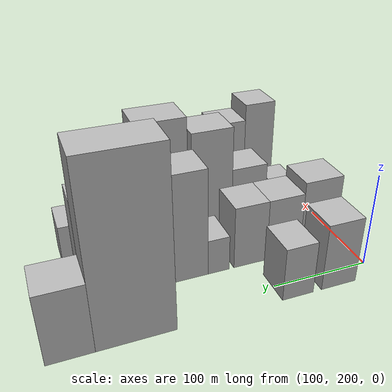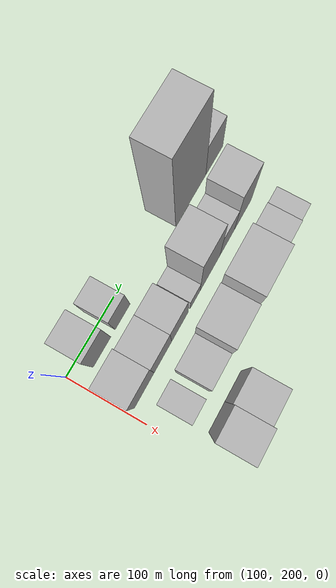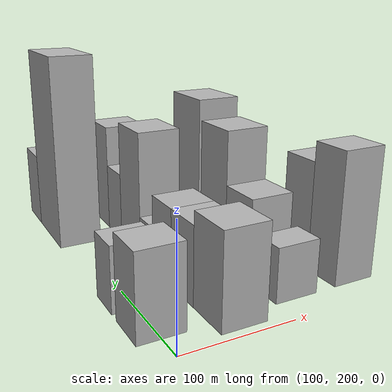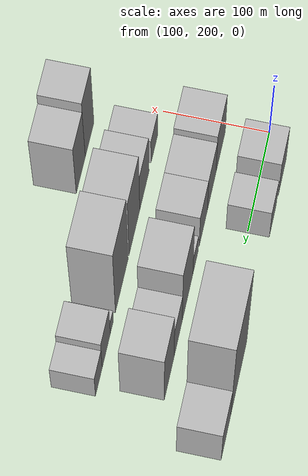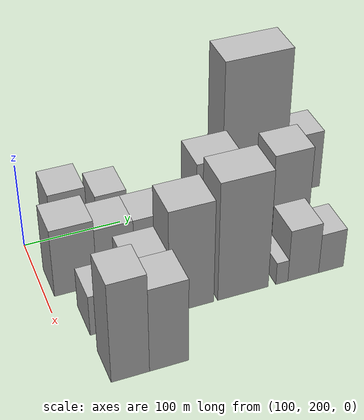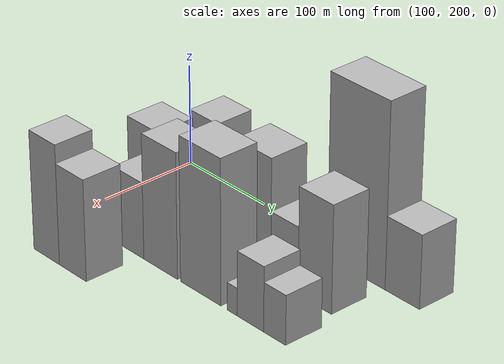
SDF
<sdf version="1.6">
 <world name="default">
  <model name="building_31">
   <static>1</static>
   <pose>100.0000 241.9794 0 0.000000 0.000000 0.000000</pose>
   <link name="link">
    <pose>0 0 36.00 0 0 0</pose>
    <collision name="collision"><geometry><box><size>40.0000 37.2263 72.0000</size></box></geometry></collision>
    <visual name="visual">
     <cast_shadows>0</cast_shadows>
     <geometry><box><size>40.0000 37.2263 72.0000</size></box></geometry>
     <material>
      <script>
       <uri>model://HANNAS_wall/materials/scripts</uri>
       <uri>model://HANNAS_wall/materials/textures</uri>
       <name>vrc/HANNAS_wall</name>
      </script>
     </material>
    </visual>
   </link>
  </model>
  <model name="building_32">
   <static>1</static>
   <pose>100.0000 285.6427 0 0.000000 0.000000 0.000000</pose>
   <link name="link">
    <pose>0 0 28.50 0 0 0</pose>
    <collision name="collision"><geometry><box><size>40.0000 32.1003 57.0000</size></box></geometry></collision>
    <visual name="visual">
     <cast_shadows>0</cast_shadows>
     <geometry><box><size>40.0000 32.1003 57.0000</size></box></geometry>
     <material>
      <script>
       <uri>model://HANNAS_wall/materials/scripts</uri>
       <uri>model://HANNAS_wall/materials/textures</uri>
       <name>vrc/HANNAS_wall</name>
      </script>
     </material>
    </visual>
   </link>
  </model>
  <model name="building_33">
   <static>1</static>
   <pose>100.0000 439.0972 0 0.000000 0.000000 0.000000</pose>
   <link name="link">
    <pose>0 0 90.00 0 0 0</pose>
    <collision name="collision"><geometry><box><size>40.0000 70.9362 180.0000</size></box></geometry></collision>
    <visual name="visual">
     <cast_shadows>0</cast_shadows>
     <geometry><box><size>40.0000 70.9362 180.0000</size></box></geometry>
     <material>
      <script>
       <uri>model://HANNAS_wall/materials/scripts</uri>
       <uri>model://HANNAS_wall/materials/textures</uri>
       <name>vrc/HANNAS_wall</name>
      </script>
     </material>
    </visual>
   </link>
  </model>
  <model name="building_34">
   <static>1</static>
   <pose>100.0000 495.0541 0 0.000000 0.000000 0.000000</pose>
   <link name="link">
    <pose>0 0 36.00 0 0 0</pose>
    <collision name="collision"><geometry><box><size>40.0000 40.9777 72.0000</size></box></geometry></collision>
    <visual name="visual">
     <cast_shadows>0</cast_shadows>
     <geometry><box><size>40.0000 40.9777 72.0000</size></box></geometry>
     <material>
      <script>
       <uri>model://HANNAS_wall/materials/scripts</uri>
       <uri>model://HANNAS_wall/materials/textures</uri>
       <name>vrc/HANNAS_wall</name>
      </script>
     </material>
    </visual>
   </link>
  </model>
  <model name="building_85">
   <static>1</static>
   <pose>160.0000 229.3633 0 0.000000 0.000000 0.000000</pose>
   <link name="link">
    <pose>0 0 40.50 0 0 0</pose>
    <collision name="collision"><geometry><box><size>40.0000 41.9816 81.0000</size></box></geometry></collision>
    <visual name="visual">
     <cast_shadows>0</cast_shadows>
     <geometry><box><size>40.0000 41.9816 81.0000</size></box></geometry>
     <material>
      <script>
       <uri>model://HANNAS_wall/materials/scripts</uri>
       <uri>model://HANNAS_wall/materials/textures</uri>
       <name>vrc/HANNAS_wall</name>
      </script>
     </material>
    </visual>
   </link>
  </model>
  <model name="building_86">
   <static>1</static>
   <pose>160.0000 269.3965 0 0.000000 0.000000 0.000000</pose>
   <link name="link">
    <pose>0 0 34.50 0 0 0</pose>
    <collision name="collision"><geometry><box><size>40.0000 38.0850 69.0000</size></box></geometry></collision>
    <visual name="visual">
     <cast_shadows>0</cast_shadows>
     <geometry><box><size>40.0000 38.0850 69.0000</size></box></geometry>
     <material>
      <script>
       <uri>model://HANNAS_wall/materials/scripts</uri>
       <uri>model://HANNAS_wall/materials/textures</uri>
       <name>vrc/HANNAS_wall</name>
      </script>
     </material>
    </visual>
   </link>
  </model>
  <model name="building_87">
   <static>1</static>
   <pose>160.0000 306.3958 0 0.000000 0.000000 0.000000</pose>
   <link name="link">
    <pose>0 0 34.50 0 0 0</pose>
    <collision name="collision"><geometry><box><size>40.0000 35.9135 69.0000</size></box></geometry></collision>
    <visual name="visual">
     <cast_shadows>0</cast_shadows>
     <geometry><box><size>40.0000 35.9135 69.0000</size></box></geometry>
     <material>
      <script>
       <uri>model://HANNAS_wall/materials/scripts</uri>
       <uri>model://HANNAS_wall/materials/textures</uri>
       <name>vrc/HANNAS_wall</name>
      </script>
     </material>
    </visual>
   </link>
  </model>
  <model name="building_88">
   <static>1</static>
   <pose>160.0000 340.5164 0 0.000000 0.000000 0.000000</pose>
   <link name="link">
    <pose>0 0 19.50 0 0 0</pose>
    <collision name="collision"><geometry><box><size>40.0000 22.3277 39.0000</size></box></geometry></collision>
    <visual name="visual">
     <cast_shadows>0</cast_shadows>
     <geometry><box><size>40.0000 22.3277 39.0000</size></box></geometry>
     <material>
      <script>
       <uri>model://HANNAS_wall/materials/scripts</uri>
       <uri>model://HANNAS_wall/materials/textures</uri>
       <name>vrc/HANNAS_wall</name>
      </script>
     </material>
    </visual>
   </link>
  </model>
  <model name="building_89">
   <static>1</static>
   <pose>160.0000 374.5953 0 0.000000 0.000000 0.000000</pose>
   <link name="link">
    <pose>0 0 58.50 0 0 0</pose>
    <collision name="collision"><geometry><box><size>40.0000 45.8302 117.0000</size></box></geometry></collision>
    <visual name="visual">
     <cast_shadows>0</cast_shadows>
     <geometry><box><size>40.0000 45.8302 117.0000</size></box></geometry>
     <material>
      <script>
       <uri>model://HANNAS_wall/materials/scripts</uri>
       <uri>model://HANNAS_wall/materials/textures</uri>
       <name>vrc/HANNAS_wall</name>
      </script>
     </material>
    </visual>
   </link>
  </model>
  <model name="building_90">
   <static>1</static>
   <pose>160.0000 414.5548 0 0.000000 0.000000 0.000000</pose>
   <link name="link">
    <pose>0 0 33.00 0 0 0</pose>
    <collision name="collision"><geometry><box><size>40.0000 34.0886 66.0000</size></box></geometry></collision>
    <visual name="visual">
     <cast_shadows>0</cast_shadows>
     <geometry><box><size>40.0000 34.0886 66.0000</size></box></geometry>
     <material>
      <script>
       <uri>model://HANNAS_wall/materials/scripts</uri>
       <uri>model://HANNAS_wall/materials/textures</uri>
       <name>vrc/HANNAS_wall</name>
      </script>
     </material>
    </visual>
   </link>
  </model>
  <model name="building_91">
   <static>1</static>
   <pose>160.0000 452.0418 0 0.000000 0.000000 0.000000</pose>
   <link name="link">
    <pose>0 0 52.50 0 0 0</pose>
    <collision name="collision"><geometry><box><size>40.0000 40.8854 105.0000</size></box></geometry></collision>
    <visual name="visual">
     <cast_shadows>0</cast_shadows>
     <geometry><box><size>40.0000 40.8854 105.0000</size></box></geometry>
     <material>
      <script>
       <uri>model://HANNAS_wall/materials/scripts</uri>
       <uri>model://HANNAS_wall/materials/textures</uri>
       <name>vrc/HANNAS_wall</name>
      </script>
     </material>
    </visual>
   </link>
  </model>
  <model name="building_143">
   <static>1</static>
   <pose>220.0000 238.9055 0 0.000000 0.000000 0.000000</pose>
   <link name="link">
    <pose>0 0 24.00 0 0 0</pose>
    <collision name="collision"><geometry><box><size>40.0000 28.1638 48.0000</size></box></geometry></collision>
    <visual name="visual">
     <cast_shadows>0</cast_shadows>
     <geometry><box><size>40.0000 28.1638 48.0000</size></box></geometry>
     <material>
      <script>
       <uri>model://HANNAS_wall/materials/scripts</uri>
       <uri>model://HANNAS_wall/materials/textures</uri>
       <name>vrc/HANNAS_wall</name>
      </script>
     </material>
    </visual>
   </link>
  </model>
  <model name="building_144">
   <static>1</static>
   <pose>220.0000 281.6469 0 0.000000 0.000000 0.000000</pose>
   <link name="link">
    <pose>0 0 37.50 0 0 0</pose>
    <collision name="collision"><geometry><box><size>40.0000 39.3190 75.0000</size></box></geometry></collision>
    <visual name="visual">
     <cast_shadows>0</cast_shadows>
     <geometry><box><size>40.0000 39.3190 75.0000</size></box></geometry>
     <material>
      <script>
       <uri>model://HANNAS_wall/materials/scripts</uri>
       <uri>model://HANNAS_wall/materials/textures</uri>
       <name>vrc/HANNAS_wall</name>
      </script>
     </material>
    </visual>
   </link>
  </model>
  <model name="building_145">
   <static>1</static>
   <pose>220.0000 323.6219 0 0.000000 0.000000 0.000000</pose>
   <link name="link">
    <pose>0 0 61.50 0 0 0</pose>
    <collision name="collision"><geometry><box><size>40.0000 44.6308 123.0000</size></box></geometry></collision>
    <visual name="visual">
     <cast_shadows>0</cast_shadows>
     <geometry><box><size>40.0000 44.6308 123.0000</size></box></geometry>
     <material>
      <script>
       <uri>model://HANNAS_wall/materials/scripts</uri>
       <uri>model://HANNAS_wall/materials/textures</uri>
       <name>vrc/HANNAS_wall</name>
      </script>
     </material>
    </visual>
   </link>
  </model>
  <model name="building_146">
   <static>1</static>
   <pose>220.0000 375.8786 0 0.000000 0.000000 0.000000</pose>
   <link name="link">
    <pose>0 0 70.50 0 0 0</pose>
    <collision name="collision"><geometry><box><size>40.0000 51.8826 141.0000</size></box></geometry></collision>
    <visual name="visual">
     <cast_shadows>0</cast_shadows>
     <geometry><box><size>40.0000 51.8826 141.0000</size></box></geometry>
     <material>
      <script>
       <uri>model://HANNAS_wall/materials/scripts</uri>
       <uri>model://HANNAS_wall/materials/textures</uri>
       <name>vrc/HANNAS_wall</name>
      </script>
     </material>
    </visual>
   </link>
  </model>
  <model name="building_147">
   <static>1</static>
   <pose>220.0000 416.1656 0 0.000000 0.000000 0.000000</pose>
   <link name="link">
    <pose>0 0 13.50 0 0 0</pose>
    <collision name="collision"><geometry><box><size>40.0000 12.6913 27.0000</size></box></geometry></collision>
    <visual name="visual">
     <cast_shadows>0</cast_shadows>
     <geometry><box><size>40.0000 12.6913 27.0000</size></box></geometry>
     <material>
      <script>
       <uri>model://HANNAS_wall/materials/scripts</uri>
       <uri>model://HANNAS_wall/materials/textures</uri>
       <name>vrc/HANNAS_wall</name>
      </script>
     </material>
    </visual>
   </link>
  </model>
  <model name="building_148">
   <static>1</static>
   <pose>220.0000 438.8307 0 0.000000 0.000000 0.000000</pose>
   <link name="link">
    <pose>0 0 31.50 0 0 0</pose>
    <collision name="collision"><geometry><box><size>40.0000 32.6391 63.0000</size></box></geometry></collision>
    <visual name="visual">
     <cast_shadows>0</cast_shadows>
     <geometry><box><size>40.0000 32.6391 63.0000</size></box></geometry>
     <material>
      <script>
       <uri>model://HANNAS_wall/materials/scripts</uri>
       <uri>model://HANNAS_wall/materials/textures</uri>
       <name>vrc/HANNAS_wall</name>
      </script>
     </material>
    </visual>
   </link>
  </model>
  <model name="building_149">
   <static>1</static>
   <pose>220.0000 468.4597 0 0.000000 0.000000 0.000000</pose>
   <link name="link">
    <pose>0 0 24.00 0 0 0</pose>
    <collision name="collision"><geometry><box><size>40.0000 26.6188 48.0000</size></box></geometry></collision>
    <visual name="visual">
     <cast_shadows>0</cast_shadows>
     <geometry><box><size>40.0000 26.6188 48.0000</size></box></geometry>
     <material>
      <script>
       <uri>model://HANNAS_wall/materials/scripts</uri>
       <uri>model://HANNAS_wall/materials/textures</uri>
       <name>vrc/HANNAS_wall</name>
      </script>
     </material>
    </visual>
   </link>
  </model>
  <model name="building_195">
   <static>1</static>
   <pose>280.0000 242.7639 0 0.000000 0.000000 0.000000</pose>
   <link name="link">
    <pose>0 0 58.50 0 0 0</pose>
    <collision name="collision"><geometry><box><size>40.0000 35.4689 117.0000</size></box></geometry></collision>
    <visual name="visual">
     <cast_shadows>0</cast_shadows>
     <geometry><box><size>40.0000 35.4689 117.0000</size></box></geometry>
     <material>
      <script>
       <uri>model://HANNAS_wall/materials/scripts</uri>
       <uri>model://HANNAS_wall/materials/textures</uri>
       <name>vrc/HANNAS_wall</name>
      </script>
     </material>
    </visual>
   </link>
  </model>
  <model name="building_196">
   <static>1</static>
   <pose>280.0000 278.8852 0 0.000000 0.000000 0.000000</pose>
   <link name="link">
    <pose>0 0 49.50 0 0 0</pose>
    <collision name="collision"><geometry><box><size>40.0000 36.7737 99.0000</size></box></geometry></collision>
    <visual name="visual">
     <cast_shadows>0</cast_shadows>
     <geometry><box><size>40.0000 36.7737 99.0000</size></box></geometry>
     <material>
      <script>
       <uri>model://HANNAS_wall/materials/scripts</uri>
       <uri>model://HANNAS_wall/materials/textures</uri>
       <name>vrc/HANNAS_wall</name>
      </script>
     </material>
    </visual>
   </link>
  </model>
 </world>
</sdf>
